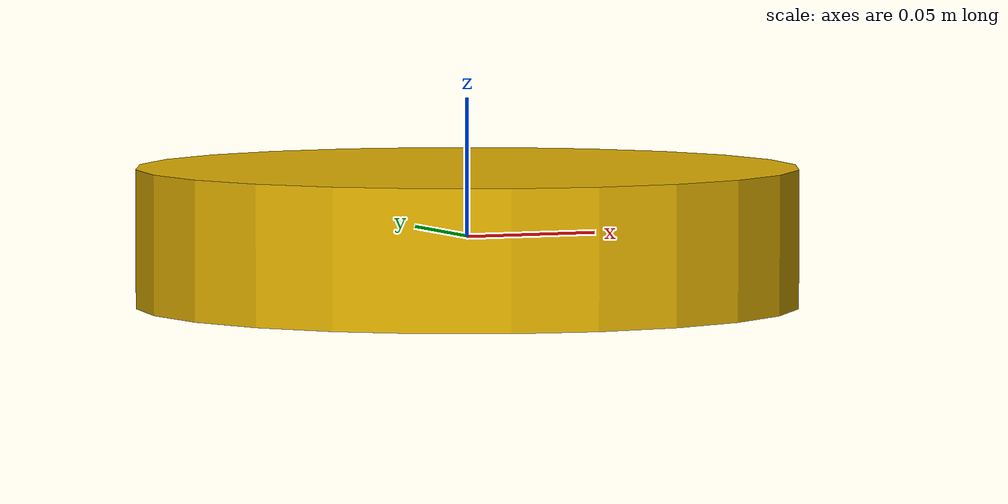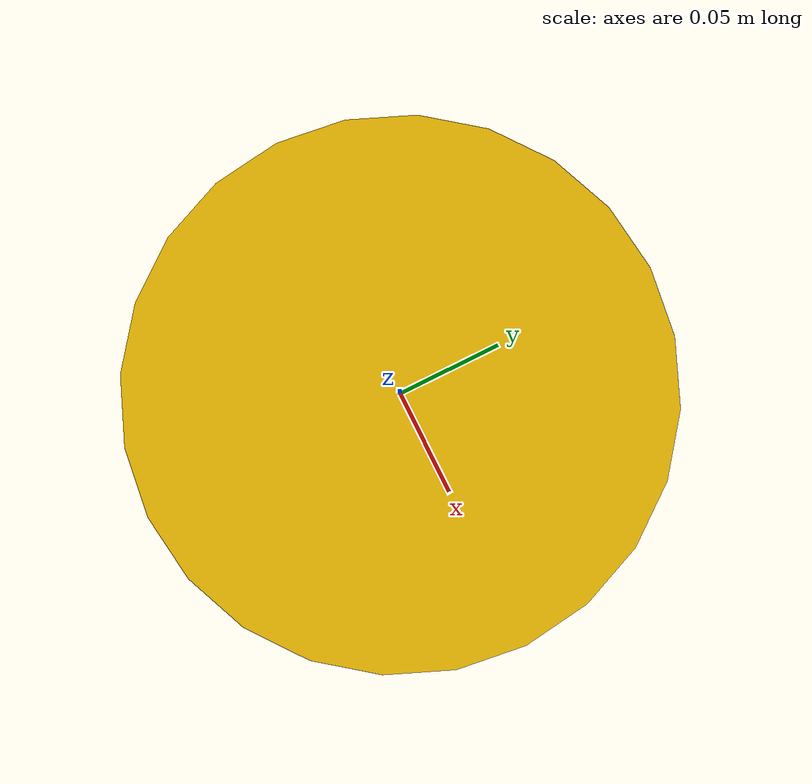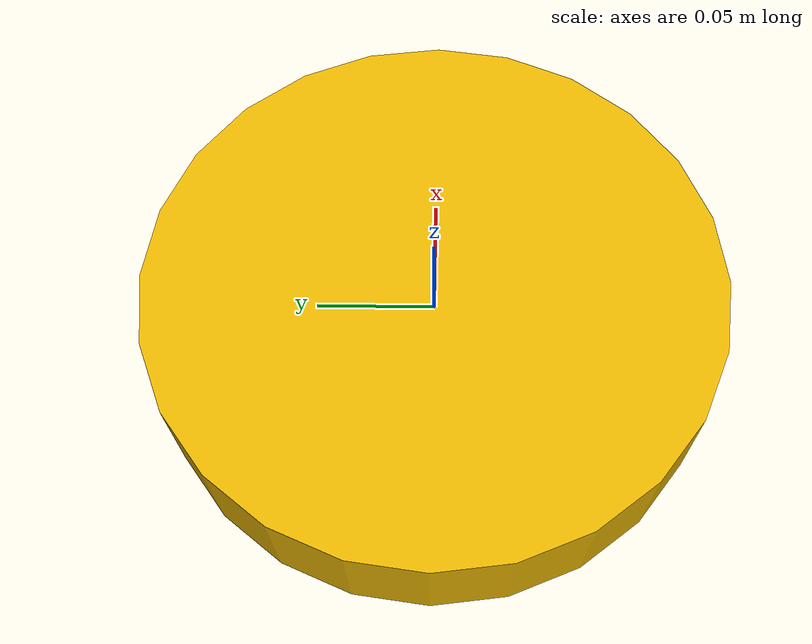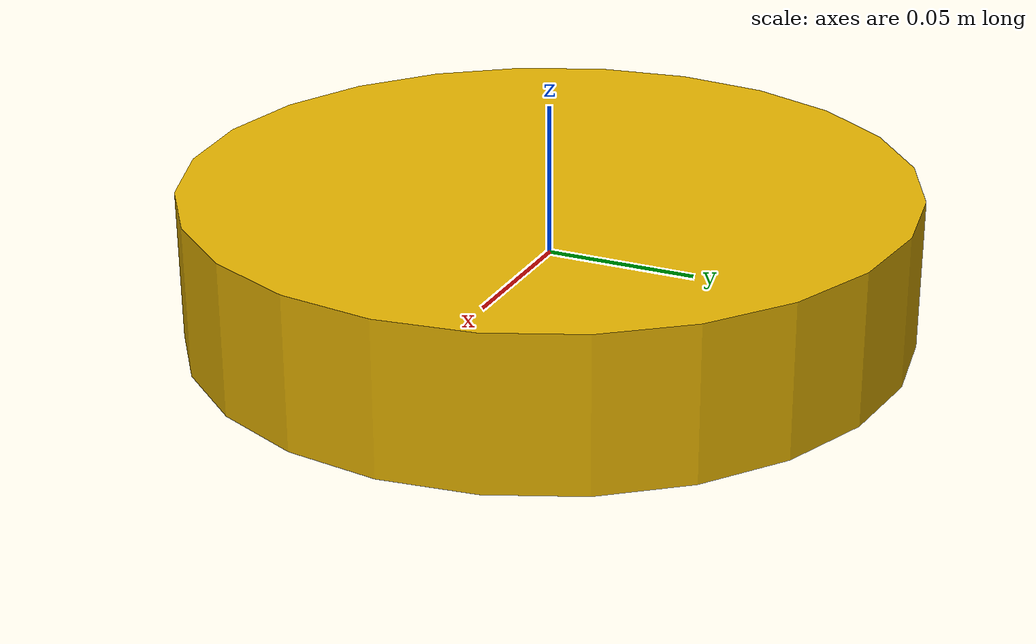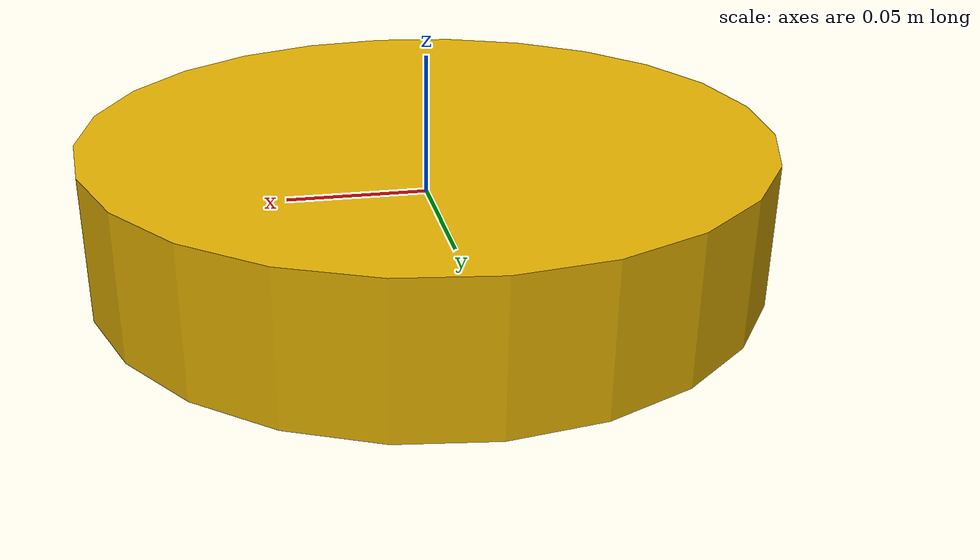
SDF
<?xml version="1.0"?>
<sdf version="1.6">
  <model name="spawn_marker_generic">
    <static>true</static>
    <pose>0 0 0 0 0 0</pose>

    <link name="marker">
      <visual name="visual">
        <geometry>
          <cylinder>
            <radius>0.12</radius>
            <length>0.05</length>
          </cylinder>
        </geometry>
        <material>
          <ambient>0.9 0.7 0.0 1</ambient>
          <diffuse>0.9 0.7 0.0 1</diffuse>
          <specular>0.5 0.5 0.5 1</specular>
        </material>
      </visual>
      <collision name="collision">
        <geometry>
          <cylinder>
            <radius>0.12</radius>
            <length>0.05</length>
          </cylinder>
        </geometry>
      </collision>
    </link>
  </model>
</sdf>
